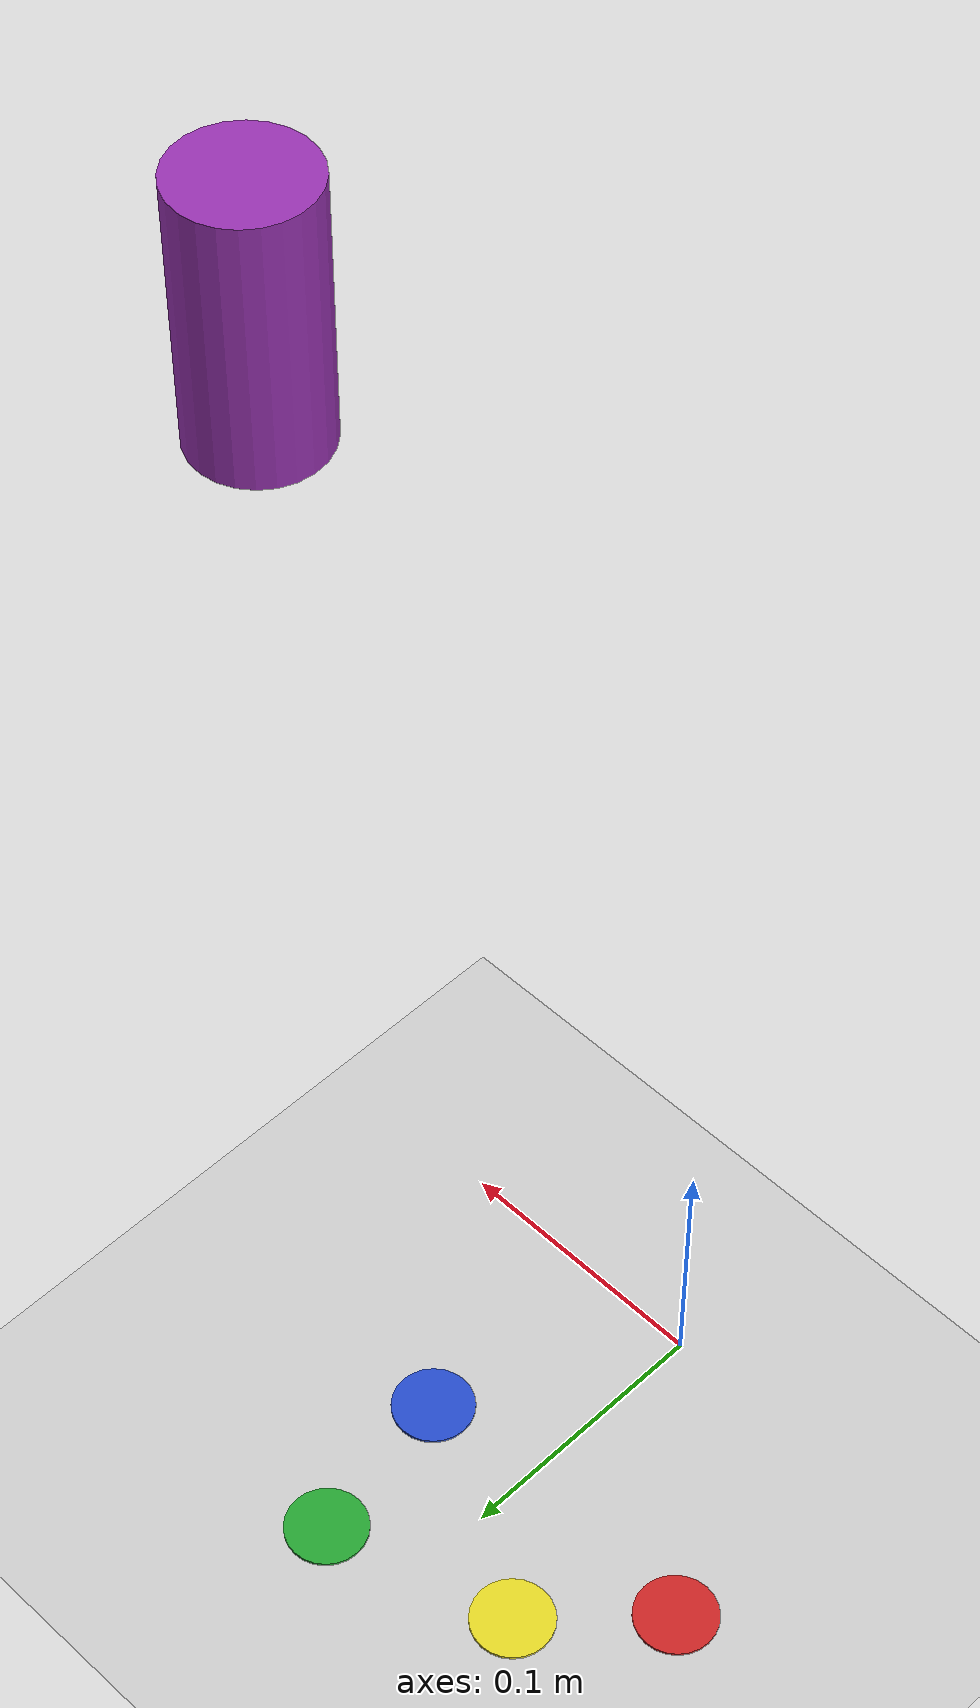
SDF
<sdf version="1.4">
 <world name="default">
  <include><uri>model://ground_plane</uri></include>
  <include><uri>model://sun</uri></include>
  <model name="A_point">
   <pose>-0.073 0.08 0.0005 0 0 0</pose>
   <link name="A_link">
    <inertial><mass>1</mass></inertial>
    <visual name="visual">
     <geometry><cylinder><radius>0.015</radius><length>0.001</length></cylinder></geometry>
     <material>
      <script><uri>file://media/materials/scripts/gazebo.material</uri><name>Gazebo/Red</name></script>
     </material>
    </visual>
   </link>
   <static>1</static>
  </model>
  <model name="B_point">
   <pose>0.035 0.14 0.0005 0 0 0</pose>
   <link name="B_link">
    <inertial><mass>1</mass></inertial>
    <visual name="visual">
     <geometry><cylinder><radius>0.015</radius><length>0.001</length></cylinder></geometry>
     <material>
      <script><uri>file://media/materials/scripts/gazebo.material</uri><name>Gazebo/Green</name></script>
     </material>
    </visual>
   </link>
   <static>1</static>
  </model>
  <model name="C_point">
   <pose>0.044 0.08 0.0005 0 0 0</pose>
   <link name="C_link">
    <inertial><mass>1</mass></inertial>
    <visual name="visual">
     <geometry><cylinder><radius>0.015</radius><length>0.001</length></cylinder></geometry>
     <material>
      <script><uri>file://media/materials/scripts/gazebo.material</uri><name>Gazebo/Blue</name></script>
     </material>
    </visual>
   </link>
   <static>1</static>
  </model>
  <model name="D_point">
   <pose>-0.035 0.12 0.0005 0 0 0</pose>
   <link name="D_link">
    <inertial><mass>1</mass></inertial>
    <visual name="visual">
     <geometry><cylinder><radius>0.015</radius><length>0.001</length></cylinder></geometry>
     <material>
      <script><uri>file://media/materials/scripts/gazebo.material</uri><name>Gazebo/Yellow</name></script>
     </material>
    </visual>
   </link>
   <static>1</static>
  </model>
  <model name="unit_cylinder_1">
   <pose>0.067 0.11 0.5 0 0 0</pose>
   <link name="link">
    <inertial>
     <mass>1</mass>
     <inertia><ixx>1</ixx><ixy>0</ixy><ixz>0</ixz><iyy>1</iyy><iyz>0</iyz><izz>1</izz></inertia>
    </inertial>
    <collision name="collision">
     <geometry><cylinder><radius>0.02</radius><length>0.08</length></cylinder></geometry>
    </collision>
    <visual name="visual">
     <geometry><cylinder><radius>0.02</radius><length>0.08</length></cylinder></geometry>
     <material>
      <script><uri>file://media/materials/scripts/gazebo.material</uri><name>Gazebo/Purple</name></script>
     </material>
    </visual>
    <velocity_decay><linear>0</linear><angular>0</angular></velocity_decay>
   </link>
   <static>0</static>
  </model>
 </world>
</sdf>
